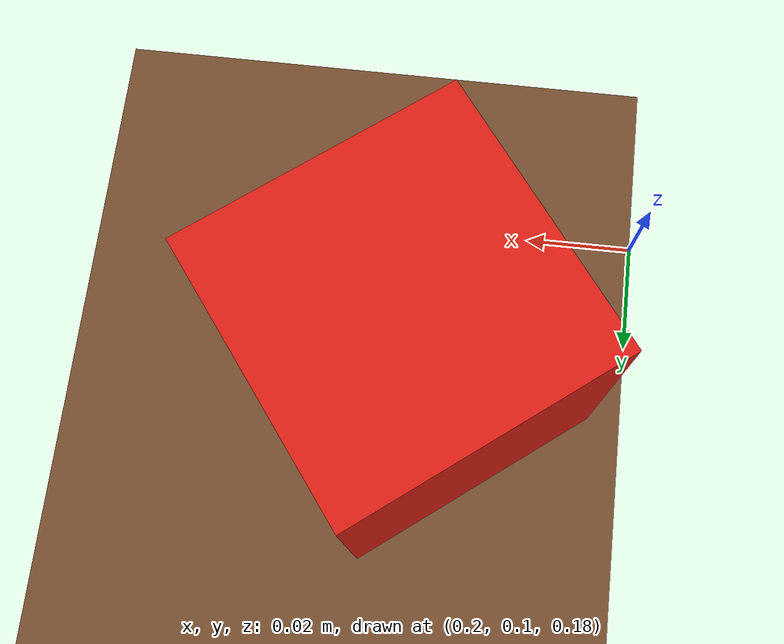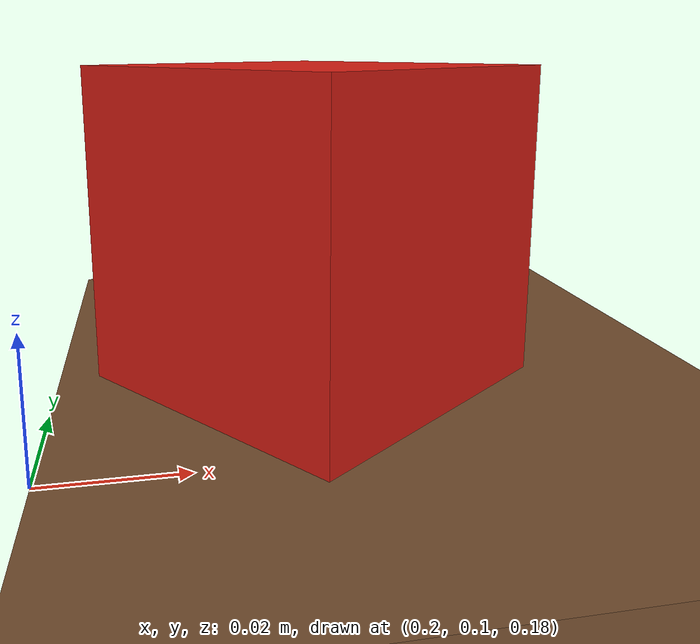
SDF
<?xml version="1.0"?>
<sdf version="1.9">
  <world name="edgegrasp_table_cube">
    <!-- scene_contract_sha256=811188d6d060c62d15188027f6e2455905ff2bd906de05859359c713f1664579 -->
    <physics name="1ms" type="ignored">
      <max_step_size>0.001</max_step_size>
      <real_time_factor>1</real_time_factor>
    </physics>
    <plugin filename="gz-sim-physics-system" name="gz::sim::systems::Physics">
      <engine>
        <filename>gz-physics-dartsim-plugin</filename>
      </engine>
    </plugin>
    <plugin filename="gz-sim-user-commands-system" name="gz::sim::systems::UserCommands" />
    <plugin filename="gz-sim-contact-system" name="gz::sim::systems::Contact" />
    <plugin filename="gz-sim-sensors-system" name="gz::sim::systems::Sensors">
      <render_engine>ogre2</render_engine>
    </plugin>
    <plugin filename="gz-sim-scene-broadcaster-system" name="gz::sim::systems::SceneBroadcaster" />
    <light type="directional" name="sun">
      <pose>0 0 10 0 0 0</pose>
      <diffuse>0.8 0.8 0.8 1</diffuse>
      <specular>0.2 0.2 0.2 1</specular>
      <direction>-0.5 0.1 -0.9</direction>
    </light>
    <model name="ground">
      <static>true</static>
      <link name="ground_link">
        <collision name="collision">
          <geometry>
            <plane>
              <normal>0 0 1</normal>
              <size>4 4</size>
            </plane>
          </geometry>
        </collision>
        <visual name="visual">
          <geometry>
            <plane>
              <normal>0 0 1</normal>
              <size>4 4</size>
            </plane>
          </geometry>
        </visual>
      </link>
    </model>
    <model name="table">
      <static>true</static>
      <pose>0.5 0 0.16 0 0 0</pose>
      <link name="table_link">
        <collision name="collision">
          <geometry>
            <box>
              <size>0.6 0.8 0.04</size>
            </box>
          </geometry>
        </collision>
        <sensor name="table_contact" type="contact">
          <always_on>true</always_on>
          <update_rate>100</update_rate>
          <contact>
            <collision>collision</collision>
            <topic>/edgegrasp/table_contacts</topic>
          </contact>
        </sensor>
        <visual name="visual">
          <geometry>
            <box>
              <size>0.6 0.8 0.04</size>
            </box>
          </geometry>
          <material>
            <diffuse>0.45 0.3 0.18 1</diffuse>
          </material>
        </visual>
      </link>
    </model>
    <model name="target_cube">
      <static>false</static>
      <pose>0.241084288413 0.129586660297 0.205 0 0 0.650007734117</pose>
      <link name="target_cube_link">
        <inertial>
          <mass>0.05</mass>
          <inertia>
            <ixx>2.08333333333e-05</ixx>
            <iyy>2.08333333333e-05</iyy>
            <izz>2.08333333333e-05</izz>
          </inertia>
        </inertial>
        <collision name="collision">
          <geometry>
            <box>
              <size>0.05 0.05 0.05</size>
            </box>
          </geometry>
        </collision>
        <sensor name="target_cube_contact" type="contact">
          <always_on>true</always_on>
          <update_rate>100</update_rate>
          <contact>
            <collision>collision</collision>
            <topic>/edgegrasp/target_cube_contacts</topic>
          </contact>
        </sensor>
        <visual name="visual">
          <geometry>
            <box>
              <size>0.05 0.05 0.05</size>
            </box>
          </geometry>
          <material>
            <diffuse>0.85 0.12 0.08 1</diffuse>
          </material>
        </visual>
      </link>
      <plugin filename="gz-sim-pose-publisher-system" name="gz::sim::systems::PosePublisher">
        <publish_link_pose>false</publish_link_pose>
        <publish_model_pose>true</publish_model_pose>
        <publish_nested_model_pose>false</publish_nested_model_pose>
        <publish_collision_pose>false</publish_collision_pose>
        <publish_visual_pose>false</publish_visual_pose>
        <publish_sensor_pose>false</publish_sensor_pose>
        <use_pose_vector_msg>false</use_pose_vector_msg>
        <update_frequency>100</update_frequency>
      </plugin>
    </model>
  </world>
</sdf>
